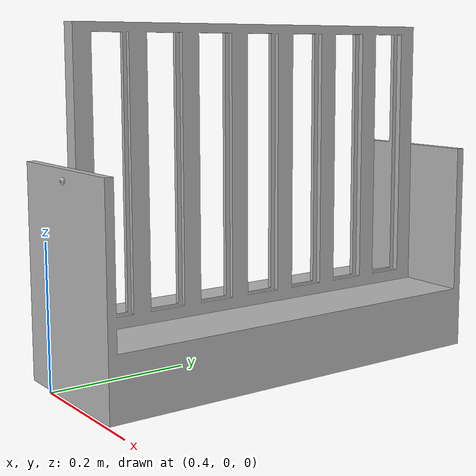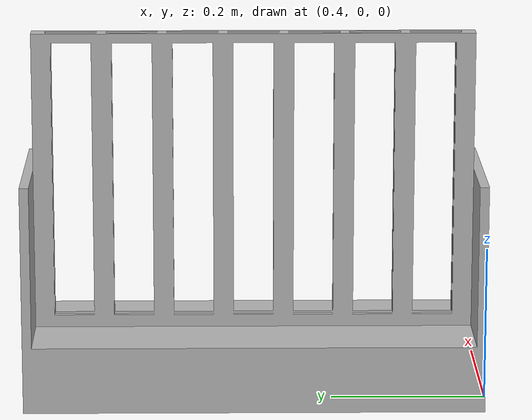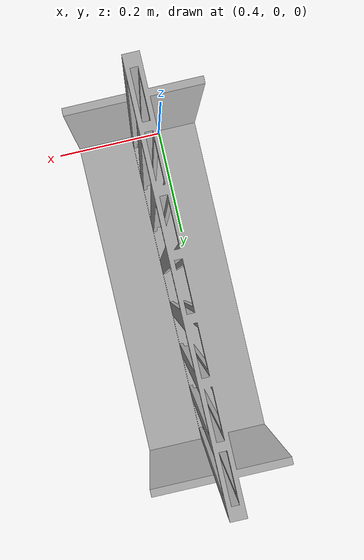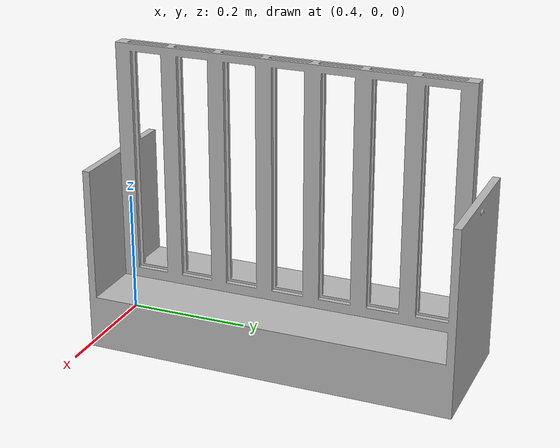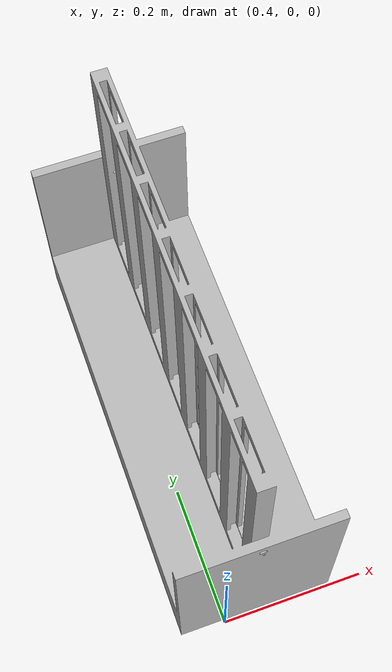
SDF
<?xml version="1.0" ?>
<sdf version="1.6">
  <model name="connect4">
    <pose>0 0 0 1.57079632679 0 1.57079632679</pose>
    <static>true</static>
    <link name="link">
      <collision name="collision">
        <geometry>
          <mesh>
            <scale>0.001 0.001 0.001</scale>
            <uri>model://connect4/meshes/connect4.dae</uri>
          </mesh>
        </geometry>
      </collision>
      <visual name="visual">
        <geometry>
          <mesh>
            <scale>0.001 0.001 0.001</scale>
            <uri>model://connect4/meshes/connect4.dae</uri>
          </mesh>
        </geometry>
      </visual>
    </link>
  </model>
</sdf>
